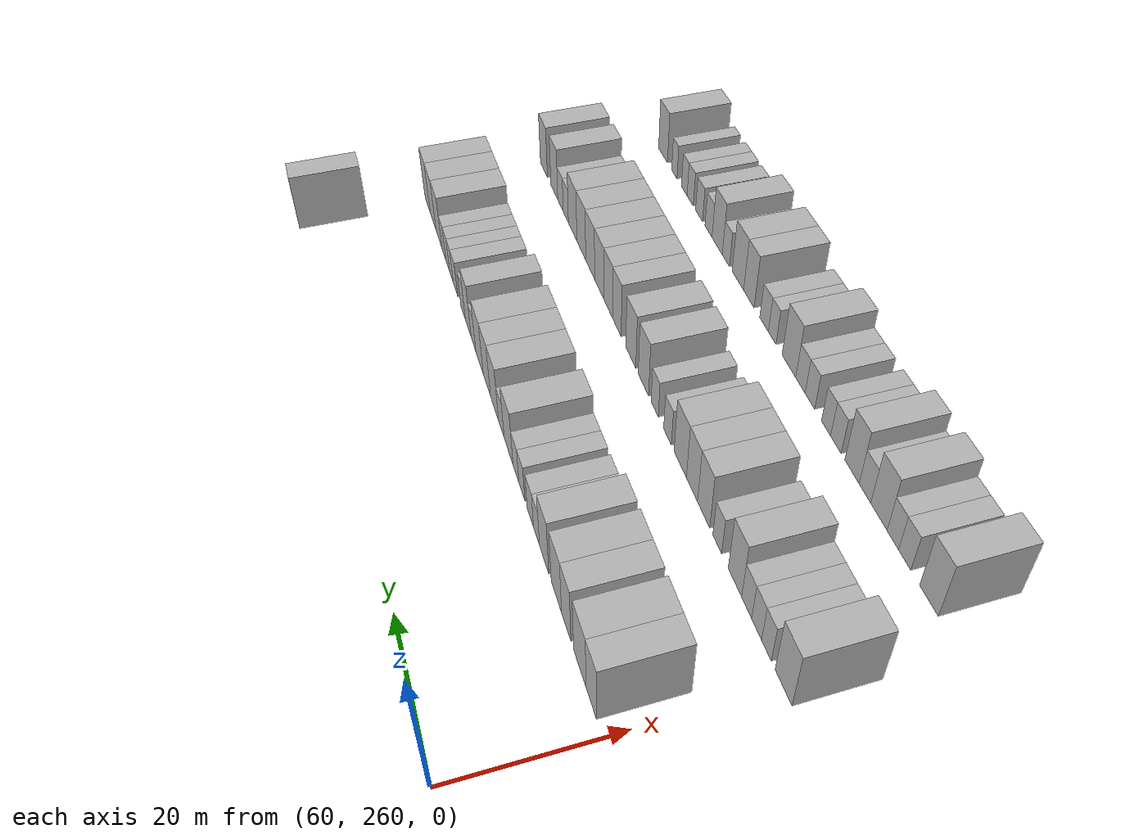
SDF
<sdf version="1.6">
 <world name="default">
  <model name="building_542">
   <static>1</static>
   <pose>63.0000 350.7032 0 0.000000 0.000000 0.000000</pose>
   <link name="link">
    <pose>0 0 4.50 0 0 0</pose>
    <collision name="collision"><geometry><box><size>10.0000 3.7293 9.0000</size></box></geometry></collision>
    <visual name="visual">
     <cast_shadows>0</cast_shadows>
     <geometry><box><size>10.0000 3.7293 9.0000</size></box></geometry>
     <material>
      <script>
       <uri>model://HANNAS_wall/materials/scripts</uri>
       <uri>model://HANNAS_wall/materials/textures</uri>
       <name>vrc/HANNAS_wall</name>
      </script>
     </material>
    </visual>
   </link>
  </model>
  <model name="building_701">
   <static>1</static>
   <pose>82.0000 263.8327 0 0.000000 0.000000 0.000000</pose>
   <link name="link">
    <pose>0 0 4.50 0 0 0</pose>
    <collision name="collision"><geometry><box><size>10.0000 3.6364 9.0000</size></box></geometry></collision>
    <visual name="visual">
     <cast_shadows>0</cast_shadows>
     <geometry><box><size>10.0000 3.6364 9.0000</size></box></geometry>
     <material>
      <script>
       <uri>model://HANNAS_wall/materials/scripts</uri>
       <uri>model://HANNAS_wall/materials/textures</uri>
       <name>vrc/HANNAS_wall</name>
      </script>
     </material>
    </visual>
   </link>
  </model>
  <model name="building_702">
   <static>1</static>
   <pose>82.0000 267.8986 0 0.000000 0.000000 0.000000</pose>
   <link name="link">
    <pose>0 0 4.50 0 0 0</pose>
    <collision name="collision"><geometry><box><size>10.0000 4.4954 9.0000</size></box></geometry></collision>
    <visual name="visual">
     <cast_shadows>0</cast_shadows>
     <geometry><box><size>10.0000 4.4954 9.0000</size></box></geometry>
     <material>
      <script>
       <uri>model://HANNAS_wall/materials/scripts</uri>
       <uri>model://HANNAS_wall/materials/textures</uri>
       <name>vrc/HANNAS_wall</name>
      </script>
     </material>
    </visual>
   </link>
  </model>
  <model name="building_703">
   <static>1</static>
   <pose>82.0000 272.9608 0 0.000000 0.000000 0.000000</pose>
   <link name="link">
    <pose>0 0 4.50 0 0 0</pose>
    <collision name="collision"><geometry><box><size>10.0000 3.6290 9.0000</size></box></geometry></collision>
    <visual name="visual">
     <cast_shadows>0</cast_shadows>
     <geometry><box><size>10.0000 3.6290 9.0000</size></box></geometry>
     <material>
      <script>
       <uri>model://HANNAS_wall/materials/scripts</uri>
       <uri>model://HANNAS_wall/materials/textures</uri>
       <name>vrc/HANNAS_wall</name>
      </script>
     </material>
    </visual>
   </link>
  </model>
  <model name="building_704">
   <static>1</static>
   <pose>82.0000 276.8304 0 0.000000 0.000000 0.000000</pose>
   <link name="link">
    <pose>0 0 4.50 0 0 0</pose>
    <collision name="collision"><geometry><box><size>10.0000 4.1103 9.0000</size></box></geometry></collision>
    <visual name="visual">
     <cast_shadows>0</cast_shadows>
     <geometry><box><size>10.0000 4.1103 9.0000</size></box></geometry>
     <material>
      <script>
       <uri>model://HANNAS_wall/materials/scripts</uri>
       <uri>model://HANNAS_wall/materials/textures</uri>
       <name>vrc/HANNAS_wall</name>
      </script>
     </material>
    </visual>
   </link>
  </model>
  <model name="building_705">
   <static>1</static>
   <pose>82.0000 281.8546 0 0.000000 0.000000 0.000000</pose>
   <link name="link">
    <pose>0 0 4.50 0 0 0</pose>
    <collision name="collision"><geometry><box><size>10.0000 3.9380 9.0000</size></box></geometry></collision>
    <visual name="visual">
     <cast_shadows>0</cast_shadows>
     <geometry><box><size>10.0000 3.9380 9.0000</size></box></geometry>
     <material>
      <script>
       <uri>model://HANNAS_wall/materials/scripts</uri>
       <uri>model://HANNAS_wall/materials/textures</uri>
       <name>vrc/HANNAS_wall</name>
      </script>
     </material>
    </visual>
   </link>
  </model>
  <model name="building_706">
   <static>1</static>
   <pose>82.0000 285.1386 0 0.000000 0.000000 0.000000</pose>
   <link name="link">
    <pose>0 0 3.00 0 0 0</pose>
    <collision name="collision"><geometry><box><size>10.0000 2.6300 6.0000</size></box></geometry></collision>
    <visual name="visual">
     <cast_shadows>0</cast_shadows>
     <geometry><box><size>10.0000 2.6300 6.0000</size></box></geometry>
     <material>
      <script>
       <uri>model://HANNAS_wall/materials/scripts</uri>
       <uri>model://HANNAS_wall/materials/textures</uri>
       <name>vrc/HANNAS_wall</name>
      </script>
     </material>
    </visual>
   </link>
  </model>
  <model name="building_707">
   <static>1</static>
   <pose>82.0000 287.8864 0 0.000000 0.000000 0.000000</pose>
   <link name="link">
    <pose>0 0 3.00 0 0 0</pose>
    <collision name="collision"><geometry><box><size>10.0000 2.8657 6.0000</size></box></geometry></collision>
    <visual name="visual">
     <cast_shadows>0</cast_shadows>
     <geometry><box><size>10.0000 2.8657 6.0000</size></box></geometry>
     <material>
      <script>
       <uri>model://HANNAS_wall/materials/scripts</uri>
       <uri>model://HANNAS_wall/materials/textures</uri>
       <name>vrc/HANNAS_wall</name>
      </script>
     </material>
    </visual>
   </link>
  </model>
  <model name="building_708">
   <static>1</static>
   <pose>82.0000 291.7132 0 0.000000 0.000000 0.000000</pose>
   <link name="link">
    <pose>0 0 3.00 0 0 0</pose>
    <collision name="collision"><geometry><box><size>10.0000 2.7879 6.0000</size></box></geometry></collision>
    <visual name="visual">
     <cast_shadows>0</cast_shadows>
     <geometry><box><size>10.0000 2.7879 6.0000</size></box></geometry>
     <material>
      <script>
       <uri>model://HANNAS_wall/materials/scripts</uri>
       <uri>model://HANNAS_wall/materials/textures</uri>
       <name>vrc/HANNAS_wall</name>
      </script>
     </material>
    </visual>
   </link>
  </model>
  <model name="building_709">
   <static>1</static>
   <pose>82.0000 294.5393 0 0.000000 0.000000 0.000000</pose>
   <link name="link">
    <pose>0 0 3.00 0 0 0</pose>
    <collision name="collision"><geometry><box><size>10.0000 2.8644 6.0000</size></box></geometry></collision>
    <visual name="visual">
     <cast_shadows>0</cast_shadows>
     <geometry><box><size>10.0000 2.8644 6.0000</size></box></geometry>
     <material>
      <script>
       <uri>model://HANNAS_wall/materials/scripts</uri>
       <uri>model://HANNAS_wall/materials/textures</uri>
       <name>vrc/HANNAS_wall</name>
      </script>
     </material>
    </visual>
   </link>
  </model>
  <model name="building_710">
   <static>1</static>
   <pose>82.0000 298.2023 0 0.000000 0.000000 0.000000</pose>
   <link name="link">
    <pose>0 0 4.50 0 0 0</pose>
    <collision name="collision"><geometry><box><size>10.0000 4.4615 9.0000</size></box></geometry></collision>
    <visual name="visual">
     <cast_shadows>0</cast_shadows>
     <geometry><box><size>10.0000 4.4615 9.0000</size></box></geometry>
     <material>
      <script>
       <uri>model://HANNAS_wall/materials/scripts</uri>
       <uri>model://HANNAS_wall/materials/textures</uri>
       <name>vrc/HANNAS_wall</name>
      </script>
     </material>
    </visual>
   </link>
  </model>
  <model name="building_711">
   <static>1</static>
   <pose>82.0000 301.8687 0 0.000000 0.000000 0.000000</pose>
   <link name="link">
    <pose>0 0 3.00 0 0 0</pose>
    <collision name="collision"><geometry><box><size>10.0000 2.8715 6.0000</size></box></geometry></collision>
    <visual name="visual">
     <cast_shadows>0</cast_shadows>
     <geometry><box><size>10.0000 2.8715 6.0000</size></box></geometry>
     <material>
      <script>
       <uri>model://HANNAS_wall/materials/scripts</uri>
       <uri>model://HANNAS_wall/materials/textures</uri>
       <name>vrc/HANNAS_wall</name>
      </script>
     </material>
    </visual>
   </link>
  </model>
  <model name="building_712">
   <static>1</static>
   <pose>82.0000 305.4776 0 0.000000 0.000000 0.000000</pose>
   <link name="link">
    <pose>0 0 4.50 0 0 0</pose>
    <collision name="collision"><geometry><box><size>10.0000 4.3463 9.0000</size></box></geometry></collision>
    <visual name="visual">
     <cast_shadows>0</cast_shadows>
     <geometry><box><size>10.0000 4.3463 9.0000</size></box></geometry>
     <material>
      <script>
       <uri>model://HANNAS_wall/materials/scripts</uri>
       <uri>model://HANNAS_wall/materials/textures</uri>
       <name>vrc/HANNAS_wall</name>
      </script>
     </material>
    </visual>
   </link>
  </model>
  <model name="building_713">
   <static>1</static>
   <pose>82.0000 309.6884 0 0.000000 0.000000 0.000000</pose>
   <link name="link">
    <pose>0 0 4.50 0 0 0</pose>
    <collision name="collision"><geometry><box><size>10.0000 4.0752 9.0000</size></box></geometry></collision>
    <visual name="visual">
     <cast_shadows>0</cast_shadows>
     <geometry><box><size>10.0000 4.0752 9.0000</size></box></geometry>
     <material>
      <script>
       <uri>model://HANNAS_wall/materials/scripts</uri>
       <uri>model://HANNAS_wall/materials/textures</uri>
       <name>vrc/HANNAS_wall</name>
      </script>
     </material>
    </visual>
   </link>
  </model>
  <model name="building_714">
   <static>1</static>
   <pose>82.0000 313.9102 0 0.000000 0.000000 0.000000</pose>
   <link name="link">
    <pose>0 0 4.50 0 0 0</pose>
    <collision name="collision"><geometry><box><size>10.0000 4.3685 9.0000</size></box></geometry></collision>
    <visual name="visual">
     <cast_shadows>0</cast_shadows>
     <geometry><box><size>10.0000 4.3685 9.0000</size></box></geometry>
     <material>
      <script>
       <uri>model://HANNAS_wall/materials/scripts</uri>
       <uri>model://HANNAS_wall/materials/textures</uri>
       <name>vrc/HANNAS_wall</name>
      </script>
     </material>
    </visual>
   </link>
  </model>
  <model name="building_715">
   <static>1</static>
   <pose>82.0000 317.4751 0 0.000000 0.000000 0.000000</pose>
   <link name="link">
    <pose>0 0 3.00 0 0 0</pose>
    <collision name="collision"><geometry><box><size>10.0000 2.7612 6.0000</size></box></geometry></collision>
    <visual name="visual">
     <cast_shadows>0</cast_shadows>
     <geometry><box><size>10.0000 2.7612 6.0000</size></box></geometry>
     <material>
      <script>
       <uri>model://HANNAS_wall/materials/scripts</uri>
       <uri>model://HANNAS_wall/materials/textures</uri>
       <name>vrc/HANNAS_wall</name>
      </script>
     </material>
    </visual>
   </link>
  </model>
  <model name="building_716">
   <static>1</static>
   <pose>82.0000 320.6723 0 0.000000 0.000000 0.000000</pose>
   <link name="link">
    <pose>0 0 4.50 0 0 0</pose>
    <collision name="collision"><geometry><box><size>10.0000 3.6331 9.0000</size></box></geometry></collision>
    <visual name="visual">
     <cast_shadows>0</cast_shadows>
     <geometry><box><size>10.0000 3.6331 9.0000</size></box></geometry>
     <material>
      <script>
       <uri>model://HANNAS_wall/materials/scripts</uri>
       <uri>model://HANNAS_wall/materials/textures</uri>
       <name>vrc/HANNAS_wall</name>
      </script>
     </material>
    </visual>
   </link>
  </model>
  <model name="building_717">
   <static>1</static>
   <pose>82.0000 323.9174 0 0.000000 0.000000 0.000000</pose>
   <link name="link">
    <pose>0 0 3.00 0 0 0</pose>
    <collision name="collision"><geometry><box><size>10.0000 2.8570 6.0000</size></box></geometry></collision>
    <visual name="visual">
     <cast_shadows>0</cast_shadows>
     <geometry><box><size>10.0000 2.8570 6.0000</size></box></geometry>
     <material>
      <script>
       <uri>model://HANNAS_wall/materials/scripts</uri>
       <uri>model://HANNAS_wall/materials/textures</uri>
       <name>vrc/HANNAS_wall</name>
      </script>
     </material>
    </visual>
   </link>
  </model>
  <model name="building_718">
   <static>1</static>
   <pose>82.0000 328.8183 0 0.000000 0.000000 0.000000</pose>
   <link name="link">
    <pose>0 0 3.00 0 0 0</pose>
    <collision name="collision"><geometry><box><size>10.0000 2.9448 6.0000</size></box></geometry></collision>
    <visual name="visual">
     <cast_shadows>0</cast_shadows>
     <geometry><box><size>10.0000 2.9448 6.0000</size></box></geometry>
     <material>
      <script>
       <uri>model://HANNAS_wall/materials/scripts</uri>
       <uri>model://HANNAS_wall/materials/textures</uri>
       <name>vrc/HANNAS_wall</name>
      </script>
     </material>
    </visual>
   </link>
  </model>
  <model name="building_719">
   <static>1</static>
   <pose>82.0000 331.5050 0 0.000000 0.000000 0.000000</pose>
   <link name="link">
    <pose>0 0 3.00 0 0 0</pose>
    <collision name="collision"><geometry><box><size>10.0000 2.4285 6.0000</size></box></geometry></collision>
    <visual name="visual">
     <cast_shadows>0</cast_shadows>
     <geometry><box><size>10.0000 2.4285 6.0000</size></box></geometry>
     <material>
      <script>
       <uri>model://HANNAS_wall/materials/scripts</uri>
       <uri>model://HANNAS_wall/materials/textures</uri>
       <name>vrc/HANNAS_wall</name>
      </script>
     </material>
    </visual>
   </link>
  </model>
  <model name="building_720">
   <static>1</static>
   <pose>82.0000 334.0654 0 0.000000 0.000000 0.000000</pose>
   <link name="link">
    <pose>0 0 3.00 0 0 0</pose>
    <collision name="collision"><geometry><box><size>10.0000 2.6923 6.0000</size></box></geometry></collision>
    <visual name="visual">
     <cast_shadows>0</cast_shadows>
     <geometry><box><size>10.0000 2.6923 6.0000</size></box></geometry>
     <material>
      <script>
       <uri>model://HANNAS_wall/materials/scripts</uri>
       <uri>model://HANNAS_wall/materials/textures</uri>
       <name>vrc/HANNAS_wall</name>
      </script>
     </material>
    </visual>
   </link>
  </model>
  <model name="building_721">
   <static>1</static>
   <pose>82.0000 336.7646 0 0.000000 0.000000 0.000000</pose>
   <link name="link">
    <pose>0 0 3.00 0 0 0</pose>
    <collision name="collision"><geometry><box><size>10.0000 2.7061 6.0000</size></box></geometry></collision>
    <visual name="visual">
     <cast_shadows>0</cast_shadows>
     <geometry><box><size>10.0000 2.7061 6.0000</size></box></geometry>
     <material>
      <script>
       <uri>model://HANNAS_wall/materials/scripts</uri>
       <uri>model://HANNAS_wall/materials/textures</uri>
       <name>vrc/HANNAS_wall</name>
      </script>
     </material>
    </visual>
   </link>
  </model>
  <model name="building_722">
   <static>1</static>
   <pose>82.0000 340.3026 0 0.000000 0.000000 0.000000</pose>
   <link name="link">
    <pose>0 0 4.50 0 0 0</pose>
    <collision name="collision"><geometry><box><size>10.0000 4.3700 9.0000</size></box></geometry></collision>
    <visual name="visual">
     <cast_shadows>0</cast_shadows>
     <geometry><box><size>10.0000 4.3700 9.0000</size></box></geometry>
     <material>
      <script>
       <uri>model://HANNAS_wall/materials/scripts</uri>
       <uri>model://HANNAS_wall/materials/textures</uri>
       <name>vrc/HANNAS_wall</name>
      </script>
     </material>
    </visual>
   </link>
  </model>
  <model name="building_723">
   <static>1</static>
   <pose>82.0000 344.6816 0 0.000000 0.000000 0.000000</pose>
   <link name="link">
    <pose>0 0 4.50 0 0 0</pose>
    <collision name="collision"><geometry><box><size>10.0000 4.3879 9.0000</size></box></geometry></collision>
    <visual name="visual">
     <cast_shadows>0</cast_shadows>
     <geometry><box><size>10.0000 4.3879 9.0000</size></box></geometry>
     <material>
      <script>
       <uri>model://HANNAS_wall/materials/scripts</uri>
       <uri>model://HANNAS_wall/materials/textures</uri>
       <name>vrc/HANNAS_wall</name>
      </script>
     </material>
    </visual>
   </link>
  </model>
  <model name="building_724">
   <static>1</static>
   <pose>82.0000 348.9063 0 0.000000 0.000000 0.000000</pose>
   <link name="link">
    <pose>0 0 4.50 0 0 0</pose>
    <collision name="collision"><geometry><box><size>10.0000 4.0616 9.0000</size></box></geometry></collision>
    <visual name="visual">
     <cast_shadows>0</cast_shadows>
     <geometry><box><size>10.0000 4.0616 9.0000</size></box></geometry>
     <material>
      <script>
       <uri>model://HANNAS_wall/materials/scripts</uri>
       <uri>model://HANNAS_wall/materials/textures</uri>
       <name>vrc/HANNAS_wall</name>
      </script>
     </material>
    </visual>
   </link>
  </model>
  <model name="building_867">
   <static>1</static>
   <pose>101.0000 259.7779 0 0.000000 0.000000 0.000000</pose>
   <link name="link">
    <pose>0 0 4.50 0 0 0</pose>
    <collision name="collision"><geometry><box><size>10.0000 4.2278 9.0000</size></box></geometry></collision>
    <visual name="visual">
     <cast_shadows>0</cast_shadows>
     <geometry><box><size>10.0000 4.2278 9.0000</size></box></geometry>
     <material>
      <script>
       <uri>model://HANNAS_wall/materials/scripts</uri>
       <uri>model://HANNAS_wall/materials/textures</uri>
       <name>vrc/HANNAS_wall</name>
      </script>
     </material>
    </visual>
   </link>
  </model>
  <model name="building_868">
   <static>1</static>
   <pose>101.0000 264.1701 0 0.000000 0.000000 0.000000</pose>
   <link name="link">
    <pose>0 0 3.00 0 0 0</pose>
    <collision name="collision"><geometry><box><size>10.0000 2.5567 6.0000</size></box></geometry></collision>
    <visual name="visual">
     <cast_shadows>0</cast_shadows>
     <geometry><box><size>10.0000 2.5567 6.0000</size></box></geometry>
     <material>
      <script>
       <uri>model://HANNAS_wall/materials/scripts</uri>
       <uri>model://HANNAS_wall/materials/textures</uri>
       <name>vrc/HANNAS_wall</name>
      </script>
     </material>
    </visual>
   </link>
  </model>
  <model name="building_869">
   <static>1</static>
   <pose>101.0000 266.7973 0 0.000000 0.000000 0.000000</pose>
   <link name="link">
    <pose>0 0 3.00 0 0 0</pose>
    <collision name="collision"><geometry><box><size>10.0000 2.6977 6.0000</size></box></geometry></collision>
    <visual name="visual">
     <cast_shadows>0</cast_shadows>
     <geometry><box><size>10.0000 2.6977 6.0000</size></box></geometry>
     <material>
      <script>
       <uri>model://HANNAS_wall/materials/scripts</uri>
       <uri>model://HANNAS_wall/materials/textures</uri>
       <name>vrc/HANNAS_wall</name>
      </script>
     </material>
    </visual>
   </link>
  </model>
  <model name="building_870">
   <static>1</static>
   <pose>101.0000 269.5507 0 0.000000 0.000000 0.000000</pose>
   <link name="link">
    <pose>0 0 3.00 0 0 0</pose>
    <collision name="collision"><geometry><box><size>10.0000 2.8090 6.0000</size></box></geometry></collision>
    <visual name="visual">
     <cast_shadows>0</cast_shadows>
     <geometry><box><size>10.0000 2.8090 6.0000</size></box></geometry>
     <material>
      <script>
       <uri>model://HANNAS_wall/materials/scripts</uri>
       <uri>model://HANNAS_wall/materials/textures</uri>
       <name>vrc/HANNAS_wall</name>
      </script>
     </material>
    </visual>
   </link>
  </model>
  <model name="building_871">
   <static>1</static>
   <pose>101.0000 272.8901 0 0.000000 0.000000 0.000000</pose>
   <link name="link">
    <pose>0 0 4.50 0 0 0</pose>
    <collision name="collision"><geometry><box><size>10.0000 3.8697 9.0000</size></box></geometry></collision>
    <visual name="visual">
     <cast_shadows>0</cast_shadows>
     <geometry><box><size>10.0000 3.8697 9.0000</size></box></geometry>
     <material>
      <script>
       <uri>model://HANNAS_wall/materials/scripts</uri>
       <uri>model://HANNAS_wall/materials/textures</uri>
       <name>vrc/HANNAS_wall</name>
      </script>
     </material>
    </visual>
   </link>
  </model>
  <model name="building_872">
   <static>1</static>
   <pose>101.0000 278.1676 0 0.000000 0.000000 0.000000</pose>
   <link name="link">
    <pose>0 0 3.00 0 0 0</pose>
    <collision name="collision"><geometry><box><size>10.0000 2.6854 6.0000</size></box></geometry></collision>
    <visual name="visual">
     <cast_shadows>0</cast_shadows>
     <geometry><box><size>10.0000 2.6854 6.0000</size></box></geometry>
     <material>
      <script>
       <uri>model://HANNAS_wall/materials/scripts</uri>
       <uri>model://HANNAS_wall/materials/textures</uri>
       <name>vrc/HANNAS_wall</name>
      </script>
     </material>
    </visual>
   </link>
  </model>
  <model name="building_873">
   <static>1</static>
   <pose>101.0000 282.4734 0 0.000000 0.000000 0.000000</pose>
   <link name="link">
    <pose>0 0 4.50 0 0 0</pose>
    <collision name="collision"><geometry><box><size>10.0000 3.9262 9.0000</size></box></geometry></collision>
    <visual name="visual">
     <cast_shadows>0</cast_shadows>
     <geometry><box><size>10.0000 3.9262 9.0000</size></box></geometry>
     <material>
      <script>
       <uri>model://HANNAS_wall/materials/scripts</uri>
       <uri>model://HANNAS_wall/materials/textures</uri>
       <name>vrc/HANNAS_wall</name>
      </script>
     </material>
    </visual>
   </link>
  </model>
  <model name="building_874">
   <static>1</static>
   <pose>101.0000 286.2929 0 0.000000 0.000000 0.000000</pose>
   <link name="link">
    <pose>0 0 4.50 0 0 0</pose>
    <collision name="collision"><geometry><box><size>10.0000 3.7128 9.0000</size></box></geometry></collision>
    <visual name="visual">
     <cast_shadows>0</cast_shadows>
     <geometry><box><size>10.0000 3.7128 9.0000</size></box></geometry>
     <material>
      <script>
       <uri>model://HANNAS_wall/materials/scripts</uri>
       <uri>model://HANNAS_wall/materials/textures</uri>
       <name>vrc/HANNAS_wall</name>
      </script>
     </material>
    </visual>
   </link>
  </model>
  <model name="building_875">
   <static>1</static>
   <pose>101.0000 290.2833 0 0.000000 0.000000 0.000000</pose>
   <link name="link">
    <pose>0 0 4.50 0 0 0</pose>
    <collision name="collision"><geometry><box><size>10.0000 4.2680 9.0000</size></box></geometry></collision>
    <visual name="visual">
     <cast_shadows>0</cast_shadows>
     <geometry><box><size>10.0000 4.2680 9.0000</size></box></geometry>
     <material>
      <script>
       <uri>model://HANNAS_wall/materials/scripts</uri>
       <uri>model://HANNAS_wall/materials/textures</uri>
       <name>vrc/HANNAS_wall</name>
      </script>
     </material>
    </visual>
   </link>
  </model>
  <model name="building_876">
   <static>1</static>
   <pose>101.0000 294.8067 0 0.000000 0.000000 0.000000</pose>
   <link name="link">
    <pose>0 0 3.00 0 0 0</pose>
    <collision name="collision"><geometry><box><size>10.0000 2.7787 6.0000</size></box></geometry></collision>
    <visual name="visual">
     <cast_shadows>0</cast_shadows>
     <geometry><box><size>10.0000 2.7787 6.0000</size></box></geometry>
     <material>
      <script>
       <uri>model://HANNAS_wall/materials/scripts</uri>
       <uri>model://HANNAS_wall/materials/textures</uri>
       <name>vrc/HANNAS_wall</name>
      </script>
     </material>
    </visual>
   </link>
  </model>
  <model name="building_877">
   <static>1</static>
   <pose>101.0000 299.5668 0 0.000000 0.000000 0.000000</pose>
   <link name="link">
    <pose>0 0 3.00 0 0 0</pose>
    <collision name="collision"><geometry><box><size>10.0000 2.7416 6.0000</size></box></geometry></collision>
    <visual name="visual">
     <cast_shadows>0</cast_shadows>
     <geometry><box><size>10.0000 2.7416 6.0000</size></box></geometry>
     <material>
      <script>
       <uri>model://HANNAS_wall/materials/scripts</uri>
       <uri>model://HANNAS_wall/materials/textures</uri>
       <name>vrc/HANNAS_wall</name>
      </script>
     </material>
    </visual>
   </link>
  </model>
  <model name="building_878">
   <static>1</static>
   <pose>101.0000 303.9743 0 0.000000 0.000000 0.000000</pose>
   <link name="link">
    <pose>0 0 4.50 0 0 0</pose>
    <collision name="collision"><geometry><box><size>10.0000 4.0733 9.0000</size></box></geometry></collision>
    <visual name="visual">
     <cast_shadows>0</cast_shadows>
     <geometry><box><size>10.0000 4.0733 9.0000</size></box></geometry>
     <material>
      <script>
       <uri>model://HANNAS_wall/materials/scripts</uri>
       <uri>model://HANNAS_wall/materials/textures</uri>
       <name>vrc/HANNAS_wall</name>
      </script>
     </material>
    </visual>
   </link>
  </model>
  <model name="building_879">
   <static>1</static>
   <pose>101.0000 309.1019 0 0.000000 0.000000 0.000000</pose>
   <link name="link">
    <pose>0 0 4.50 0 0 0</pose>
    <collision name="collision"><geometry><box><size>10.0000 4.1820 9.0000</size></box></geometry></collision>
    <visual name="visual">
     <cast_shadows>0</cast_shadows>
     <geometry><box><size>10.0000 4.1820 9.0000</size></box></geometry>
     <material>
      <script>
       <uri>model://HANNAS_wall/materials/scripts</uri>
       <uri>model://HANNAS_wall/materials/textures</uri>
       <name>vrc/HANNAS_wall</name>
      </script>
     </material>
    </visual>
   </link>
  </model>
  <model name="building_880">
   <static>1</static>
   <pose>101.0000 315.1020 0 0.000000 0.000000 0.000000</pose>
   <link name="link">
    <pose>0 0 4.50 0 0 0</pose>
    <collision name="collision"><geometry><box><size>10.0000 3.8182 9.0000</size></box></geometry></collision>
    <visual name="visual">
     <cast_shadows>0</cast_shadows>
     <geometry><box><size>10.0000 3.8182 9.0000</size></box></geometry>
     <material>
      <script>
       <uri>model://HANNAS_wall/materials/scripts</uri>
       <uri>model://HANNAS_wall/materials/textures</uri>
       <name>vrc/HANNAS_wall</name>
      </script>
     </material>
    </visual>
   </link>
  </model>
  <model name="building_881">
   <static>1</static>
   <pose>101.0000 319.0130 0 0.000000 0.000000 0.000000</pose>
   <link name="link">
    <pose>0 0 4.50 0 0 0</pose>
    <collision name="collision"><geometry><box><size>10.0000 4.0037 9.0000</size></box></geometry></collision>
    <visual name="visual">
     <cast_shadows>0</cast_shadows>
     <geometry><box><size>10.0000 4.0037 9.0000</size></box></geometry>
     <material>
      <script>
       <uri>model://HANNAS_wall/materials/scripts</uri>
       <uri>model://HANNAS_wall/materials/textures</uri>
       <name>vrc/HANNAS_wall</name>
      </script>
     </material>
    </visual>
   </link>
  </model>
  <model name="building_882">
   <static>1</static>
   <pose>101.0000 323.1503 0 0.000000 0.000000 0.000000</pose>
   <link name="link">
    <pose>0 0 4.50 0 0 0</pose>
    <collision name="collision"><geometry><box><size>10.0000 4.2710 9.0000</size></box></geometry></collision>
    <visual name="visual">
     <cast_shadows>0</cast_shadows>
     <geometry><box><size>10.0000 4.2710 9.0000</size></box></geometry>
     <material>
      <script>
       <uri>model://HANNAS_wall/materials/scripts</uri>
       <uri>model://HANNAS_wall/materials/textures</uri>
       <name>vrc/HANNAS_wall</name>
      </script>
     </material>
    </visual>
   </link>
  </model>
  <model name="building_883">
   <static>1</static>
   <pose>101.0000 327.4695 0 0.000000 0.000000 0.000000</pose>
   <link name="link">
    <pose>0 0 4.50 0 0 0</pose>
    <collision name="collision"><geometry><box><size>10.0000 4.3673 9.0000</size></box></geometry></collision>
    <visual name="visual">
     <cast_shadows>0</cast_shadows>
     <geometry><box><size>10.0000 4.3673 9.0000</size></box></geometry>
     <material>
      <script>
       <uri>model://HANNAS_wall/materials/scripts</uri>
       <uri>model://HANNAS_wall/materials/textures</uri>
       <name>vrc/HANNAS_wall</name>
      </script>
     </material>
    </visual>
   </link>
  </model>
  <model name="building_884">
   <static>1</static>
   <pose>101.0000 331.8958 0 0.000000 0.000000 0.000000</pose>
   <link name="link">
    <pose>0 0 4.50 0 0 0</pose>
    <collision name="collision"><geometry><box><size>10.0000 4.4852 9.0000</size></box></geometry></collision>
    <visual name="visual">
     <cast_shadows>0</cast_shadows>
     <geometry><box><size>10.0000 4.4852 9.0000</size></box></geometry>
     <material>
      <script>
       <uri>model://HANNAS_wall/materials/scripts</uri>
       <uri>model://HANNAS_wall/materials/textures</uri>
       <name>vrc/HANNAS_wall</name>
      </script>
     </material>
    </visual>
   </link>
  </model>
  <model name="building_885">
   <static>1</static>
   <pose>101.0000 336.3688 0 0.000000 0.000000 0.000000</pose>
   <link name="link">
    <pose>0 0 4.50 0 0 0</pose>
    <collision name="collision"><geometry><box><size>10.0000 4.4609 9.0000</size></box></geometry></collision>
    <visual name="visual">
     <cast_shadows>0</cast_shadows>
     <geometry><box><size>10.0000 4.4609 9.0000</size></box></geometry>
     <material>
      <script>
       <uri>model://HANNAS_wall/materials/scripts</uri>
       <uri>model://HANNAS_wall/materials/textures</uri>
       <name>vrc/HANNAS_wall</name>
      </script>
     </material>
    </visual>
   </link>
  </model>
  <model name="building_886">
   <static>1</static>
   <pose>101.0000 340.0154 0 0.000000 0.000000 0.000000</pose>
   <link name="link">
    <pose>0 0 3.00 0 0 0</pose>
    <collision name="collision"><geometry><box><size>10.0000 2.8323 6.0000</size></box></geometry></collision>
    <visual name="visual">
     <cast_shadows>0</cast_shadows>
     <geometry><box><size>10.0000 2.8323 6.0000</size></box></geometry>
     <material>
      <script>
       <uri>model://HANNAS_wall/materials/scripts</uri>
       <uri>model://HANNAS_wall/materials/textures</uri>
       <name>vrc/HANNAS_wall</name>
      </script>
     </material>
    </visual>
   </link>
  </model>
  <model name="building_887">
   <static>1</static>
   <pose>101.0000 342.9173 0 0.000000 0.000000 0.000000</pose>
   <link name="link">
    <pose>0 0 3.00 0 0 0</pose>
    <collision name="collision"><geometry><box><size>10.0000 2.9715 6.0000</size></box></geometry></collision>
    <visual name="visual">
     <cast_shadows>0</cast_shadows>
     <geometry><box><size>10.0000 2.9715 6.0000</size></box></geometry>
     <material>
      <script>
       <uri>model://HANNAS_wall/materials/scripts</uri>
       <uri>model://HANNAS_wall/materials/textures</uri>
       <name>vrc/HANNAS_wall</name>
      </script>
     </material>
    </visual>
   </link>
  </model>
  <model name="building_888">
   <static>1</static>
   <pose>101.0000 346.3729 0 0.000000 0.000000 0.000000</pose>
   <link name="link">
    <pose>0 0 4.50 0 0 0</pose>
    <collision name="collision"><geometry><box><size>10.0000 3.9397 9.0000</size></box></geometry></collision>
    <visual name="visual">
     <cast_shadows>0</cast_shadows>
     <geometry><box><size>10.0000 3.9397 9.0000</size></box></geometry>
     <material>
      <script>
       <uri>model://HANNAS_wall/materials/scripts</uri>
       <uri>model://HANNAS_wall/materials/textures</uri>
       <name>vrc/HANNAS_wall</name>
      </script>
     </material>
    </visual>
   </link>
  </model>
  <model name="building_889">
   <static>1</static>
   <pose>101.0000 352.4017 0 0.000000 0.000000 0.000000</pose>
   <link name="link">
    <pose>0 0 4.50 0 0 0</pose>
    <collision name="collision"><geometry><box><size>10.0000 4.1180 9.0000</size></box></geometry></collision>
    <visual name="visual">
     <cast_shadows>0</cast_shadows>
     <geometry><box><size>10.0000 4.1180 9.0000</size></box></geometry>
     <material>
      <script>
       <uri>model://HANNAS_wall/materials/scripts</uri>
       <uri>model://HANNAS_wall/materials/textures</uri>
       <name>vrc/HANNAS_wall</name>
      </script>
     </material>
    </visual>
   </link>
  </model>
  <model name="building_1047">
   <static>1</static>
   <pose>120.0000 264.6358 0 0.000000 0.000000 0.000000</pose>
   <link name="link">
    <pose>0 0 4.50 0 0 0</pose>
    <collision name="collision"><geometry><box><size>10.0000 4.0927 9.0000</size></box></geometry></collision>
    <visual name="visual">
     <cast_shadows>0</cast_shadows>
     <geometry><box><size>10.0000 4.0927 9.0000</size></box></geometry>
     <material>
      <script>
       <uri>model://HANNAS_wall/materials/scripts</uri>
       <uri>model://HANNAS_wall/materials/textures</uri>
       <name>vrc/HANNAS_wall</name>
      </script>
     </material>
    </visual>
   </link>
  </model>
  <model name="building_1048">
   <static>1</static>
   <pose>120.0000 270.1131 0 0.000000 0.000000 0.000000</pose>
   <link name="link">
    <pose>0 0 3.00 0 0 0</pose>
    <collision name="collision"><geometry><box><size>10.0000 2.8618 6.0000</size></box></geometry></collision>
    <visual name="visual">
     <cast_shadows>0</cast_shadows>
     <geometry><box><size>10.0000 2.8618 6.0000</size></box></geometry>
     <material>
      <script>
       <uri>model://HANNAS_wall/materials/scripts</uri>
       <uri>model://HANNAS_wall/materials/textures</uri>
       <name>vrc/HANNAS_wall</name>
      </script>
     </material>
    </visual>
   </link>
  </model>
  <model name="building_1049">
   <static>1</static>
   <pose>120.0000 272.9182 0 0.000000 0.000000 0.000000</pose>
   <link name="link">
    <pose>0 0 3.00 0 0 0</pose>
    <collision name="collision"><geometry><box><size>10.0000 2.7484 6.0000</size></box></geometry></collision>
    <visual name="visual">
     <cast_shadows>0</cast_shadows>
     <geometry><box><size>10.0000 2.7484 6.0000</size></box></geometry>
     <material>
      <script>
       <uri>model://HANNAS_wall/materials/scripts</uri>
       <uri>model://HANNAS_wall/materials/textures</uri>
       <name>vrc/HANNAS_wall</name>
      </script>
     </material>
    </visual>
   </link>
  </model>
  <model name="building_1050">
   <static>1</static>
   <pose>120.0000 276.3297 0 0.000000 0.000000 0.000000</pose>
   <link name="link">
    <pose>0 0 4.50 0 0 0</pose>
    <collision name="collision"><geometry><box><size>10.0000 4.0747 9.0000</size></box></geometry></collision>
    <visual name="visual">
     <cast_shadows>0</cast_shadows>
     <geometry><box><size>10.0000 4.0747 9.0000</size></box></geometry>
     <material>
      <script>
       <uri>model://HANNAS_wall/materials/scripts</uri>
       <uri>model://HANNAS_wall/materials/textures</uri>
       <name>vrc/HANNAS_wall</name>
      </script>
     </material>
    </visual>
   </link>
  </model>
  <model name="building_1051">
   <static>1</static>
   <pose>120.0000 279.8543 0 0.000000 0.000000 0.000000</pose>
   <link name="link">
    <pose>0 0 3.00 0 0 0</pose>
    <collision name="collision"><geometry><box><size>10.0000 2.9746 6.0000</size></box></geometry></collision>
    <visual name="visual">
     <cast_shadows>0</cast_shadows>
     <geometry><box><size>10.0000 2.9746 6.0000</size></box></geometry>
     <material>
      <script>
       <uri>model://HANNAS_wall/materials/scripts</uri>
       <uri>model://HANNAS_wall/materials/textures</uri>
       <name>vrc/HANNAS_wall</name>
      </script>
     </material>
    </visual>
   </link>
  </model>
  <model name="building_1052">
   <static>1</static>
   <pose>120.0000 283.2533 0 0.000000 0.000000 0.000000</pose>
   <link name="link">
    <pose>0 0 4.50 0 0 0</pose>
    <collision name="collision"><geometry><box><size>10.0000 3.8234 9.0000</size></box></geometry></collision>
    <visual name="visual">
     <cast_shadows>0</cast_shadows>
     <geometry><box><size>10.0000 3.8234 9.0000</size></box></geometry>
     <material>
      <script>
       <uri>model://HANNAS_wall/materials/scripts</uri>
       <uri>model://HANNAS_wall/materials/textures</uri>
       <name>vrc/HANNAS_wall</name>
      </script>
     </material>
    </visual>
   </link>
  </model>
  <model name="building_1053">
   <static>1</static>
   <pose>120.0000 287.6356 0 0.000000 0.000000 0.000000</pose>
   <link name="link">
    <pose>0 0 3.00 0 0 0</pose>
    <collision name="collision"><geometry><box><size>10.0000 2.9411 6.0000</size></box></geometry></collision>
    <visual name="visual">
     <cast_shadows>0</cast_shadows>
     <geometry><box><size>10.0000 2.9411 6.0000</size></box></geometry>
     <material>
      <script>
       <uri>model://HANNAS_wall/materials/scripts</uri>
       <uri>model://HANNAS_wall/materials/textures</uri>
       <name>vrc/HANNAS_wall</name>
      </script>
     </material>
    </visual>
   </link>
  </model>
  <model name="building_1054">
   <static>1</static>
   <pose>120.0000 290.4002 0 0.000000 0.000000 0.000000</pose>
   <link name="link">
    <pose>0 0 3.00 0 0 0</pose>
    <collision name="collision"><geometry><box><size>10.0000 2.5880 6.0000</size></box></geometry></collision>
    <visual name="visual">
     <cast_shadows>0</cast_shadows>
     <geometry><box><size>10.0000 2.5880 6.0000</size></box></geometry>
     <material>
      <script>
       <uri>model://HANNAS_wall/materials/scripts</uri>
       <uri>model://HANNAS_wall/materials/textures</uri>
       <name>vrc/HANNAS_wall</name>
      </script>
     </material>
    </visual>
   </link>
  </model>
  <model name="building_1055">
   <static>1</static>
   <pose>120.0000 295.1323 0 0.000000 0.000000 0.000000</pose>
   <link name="link">
    <pose>0 0 3.00 0 0 0</pose>
    <collision name="collision"><geometry><box><size>10.0000 2.8763 6.0000</size></box></geometry></collision>
    <visual name="visual">
     <cast_shadows>0</cast_shadows>
     <geometry><box><size>10.0000 2.8763 6.0000</size></box></geometry>
     <material>
      <script>
       <uri>model://HANNAS_wall/materials/scripts</uri>
       <uri>model://HANNAS_wall/materials/textures</uri>
       <name>vrc/HANNAS_wall</name>
      </script>
     </material>
    </visual>
   </link>
  </model>
  <model name="building_1056">
   <static>1</static>
   <pose>120.0000 298.0150 0 0.000000 0.000000 0.000000</pose>
   <link name="link">
    <pose>0 0 3.00 0 0 0</pose>
    <collision name="collision"><geometry><box><size>10.0000 2.8891 6.0000</size></box></geometry></collision>
    <visual name="visual">
     <cast_shadows>0</cast_shadows>
     <geometry><box><size>10.0000 2.8891 6.0000</size></box></geometry>
     <material>
      <script>
       <uri>model://HANNAS_wall/materials/scripts</uri>
       <uri>model://HANNAS_wall/materials/textures</uri>
       <name>vrc/HANNAS_wall</name>
      </script>
     </material>
    </visual>
   </link>
  </model>
  <model name="building_1057">
   <static>1</static>
   <pose>120.0000 301.6229 0 0.000000 0.000000 0.000000</pose>
   <link name="link">
    <pose>0 0 4.50 0 0 0</pose>
    <collision name="collision"><geometry><box><size>10.0000 4.3267 9.0000</size></box></geometry></collision>
    <visual name="visual">
     <cast_shadows>0</cast_shadows>
     <geometry><box><size>10.0000 4.3267 9.0000</size></box></geometry>
     <material>
      <script>
       <uri>model://HANNAS_wall/materials/scripts</uri>
       <uri>model://HANNAS_wall/materials/textures</uri>
       <name>vrc/HANNAS_wall</name>
      </script>
     </material>
    </visual>
   </link>
  </model>
  <model name="building_1058">
   <static>1</static>
   <pose>120.0000 307.0616 0 0.000000 0.000000 0.000000</pose>
   <link name="link">
    <pose>0 0 3.00 0 0 0</pose>
    <collision name="collision"><geometry><box><size>10.0000 2.5507 6.0000</size></box></geometry></collision>
    <visual name="visual">
     <cast_shadows>0</cast_shadows>
     <geometry><box><size>10.0000 2.5507 6.0000</size></box></geometry>
     <material>
      <script>
       <uri>model://HANNAS_wall/materials/scripts</uri>
       <uri>model://HANNAS_wall/materials/textures</uri>
       <name>vrc/HANNAS_wall</name>
      </script>
     </material>
    </visual>
   </link>
  </model>
  <model name="building_1059">
   <static>1</static>
   <pose>120.0000 309.8096 0 0.000000 0.000000 0.000000</pose>
   <link name="link">
    <pose>0 0 3.00 0 0 0</pose>
    <collision name="collision"><geometry><box><size>10.0000 2.9452 6.0000</size></box></geometry></collision>
    <visual name="visual">
     <cast_shadows>0</cast_shadows>
     <geometry><box><size>10.0000 2.9452 6.0000</size></box></geometry>
     <material>
      <script>
       <uri>model://HANNAS_wall/materials/scripts</uri>
       <uri>model://HANNAS_wall/materials/textures</uri>
       <name>vrc/HANNAS_wall</name>
      </script>
     </material>
    </visual>
   </link>
  </model>
  <model name="building_1060">
   <static>1</static>
   <pose>120.0000 315.1578 0 0.000000 0.000000 0.000000</pose>
   <link name="link">
    <pose>0 0 4.50 0 0 0</pose>
    <collision name="collision"><geometry><box><size>10.0000 3.7513 9.0000</size></box></geometry></collision>
    <visual name="visual">
     <cast_shadows>0</cast_shadows>
     <geometry><box><size>10.0000 3.7513 9.0000</size></box></geometry>
     <material>
      <script>
       <uri>model://HANNAS_wall/materials/scripts</uri>
       <uri>model://HANNAS_wall/materials/textures</uri>
       <name>vrc/HANNAS_wall</name>
      </script>
     </material>
    </visual>
   </link>
  </model>
  <model name="building_1061">
   <static>1</static>
   <pose>120.0000 319.1713 0 0.000000 0.000000 0.000000</pose>
   <link name="link">
    <pose>0 0 4.50 0 0 0</pose>
    <collision name="collision"><geometry><box><size>10.0000 4.2756 9.0000</size></box></geometry></collision>
    <visual name="visual">
     <cast_shadows>0</cast_shadows>
     <geometry><box><size>10.0000 4.2756 9.0000</size></box></geometry>
     <material>
      <script>
       <uri>model://HANNAS_wall/materials/scripts</uri>
       <uri>model://HANNAS_wall/materials/textures</uri>
       <name>vrc/HANNAS_wall</name>
      </script>
     </material>
    </visual>
   </link>
  </model>
  <model name="building_1062">
   <static>1</static>
   <pose>120.0000 323.6911 0 0.000000 0.000000 0.000000</pose>
   <link name="link">
    <pose>0 0 3.00 0 0 0</pose>
    <collision name="collision"><geometry><box><size>10.0000 2.7640 6.0000</size></box></geometry></collision>
    <visual name="visual">
     <cast_shadows>0</cast_shadows>
     <geometry><box><size>10.0000 2.7640 6.0000</size></box></geometry>
     <material>
      <script>
       <uri>model://HANNAS_wall/materials/scripts</uri>
       <uri>model://HANNAS_wall/materials/textures</uri>
       <name>vrc/HANNAS_wall</name>
      </script>
     </material>
    </visual>
   </link>
  </model>
  <model name="building_1063">
   <static>1</static>
   <pose>120.0000 327.1145 0 0.000000 0.000000 0.000000</pose>
   <link name="link">
    <pose>0 0 4.50 0 0 0</pose>
    <collision name="collision"><geometry><box><size>10.0000 4.0828 9.0000</size></box></geometry></collision>
    <visual name="visual">
     <cast_shadows>0</cast_shadows>
     <geometry><box><size>10.0000 4.0828 9.0000</size></box></geometry>
     <material>
      <script>
       <uri>model://HANNAS_wall/materials/scripts</uri>
       <uri>model://HANNAS_wall/materials/textures</uri>
       <name>vrc/HANNAS_wall</name>
      </script>
     </material>
    </visual>
   </link>
  </model>
  <model name="building_1064">
   <static>1</static>
   <pose>120.0000 330.5974 0 0.000000 0.000000 0.000000</pose>
   <link name="link">
    <pose>0 0 3.00 0 0 0</pose>
    <collision name="collision"><geometry><box><size>10.0000 2.8831 6.0000</size></box></geometry></collision>
    <visual name="visual">
     <cast_shadows>0</cast_shadows>
     <geometry><box><size>10.0000 2.8831 6.0000</size></box></geometry>
     <material>
      <script>
       <uri>model://HANNAS_wall/materials/scripts</uri>
       <uri>model://HANNAS_wall/materials/textures</uri>
       <name>vrc/HANNAS_wall</name>
      </script>
     </material>
    </visual>
   </link>
  </model>
  <model name="building_1065">
   <static>1</static>
   <pose>120.0000 334.4977 0 0.000000 0.000000 0.000000</pose>
   <link name="link">
    <pose>0 0 3.00 0 0 0</pose>
    <collision name="collision"><geometry><box><size>10.0000 2.9174 6.0000</size></box></geometry></collision>
    <visual name="visual">
     <cast_shadows>0</cast_shadows>
     <geometry><box><size>10.0000 2.9174 6.0000</size></box></geometry>
     <material>
      <script>
       <uri>model://HANNAS_wall/materials/scripts</uri>
       <uri>model://HANNAS_wall/materials/textures</uri>
       <name>vrc/HANNAS_wall</name>
      </script>
     </material>
    </visual>
   </link>
  </model>
  <model name="building_1066">
   <static>1</static>
   <pose>120.0000 338.3020 0 0.000000 0.000000 0.000000</pose>
   <link name="link">
    <pose>0 0 3.00 0 0 0</pose>
    <collision name="collision"><geometry><box><size>10.0000 2.6914 6.0000</size></box></geometry></collision>
    <visual name="visual">
     <cast_shadows>0</cast_shadows>
     <geometry><box><size>10.0000 2.6914 6.0000</size></box></geometry>
     <material>
      <script>
       <uri>model://HANNAS_wall/materials/scripts</uri>
       <uri>model://HANNAS_wall/materials/textures</uri>
       <name>vrc/HANNAS_wall</name>
      </script>
     </material>
    </visual>
   </link>
  </model>
  <model name="building_1067">
   <static>1</static>
   <pose>120.0000 340.8988 0 0.000000 0.000000 0.000000</pose>
   <link name="link">
    <pose>0 0 3.00 0 0 0</pose>
    <collision name="collision"><geometry><box><size>10.0000 2.5022 6.0000</size></box></geometry></collision>
    <visual name="visual">
     <cast_shadows>0</cast_shadows>
     <geometry><box><size>10.0000 2.5022 6.0000</size></box></geometry>
     <material>
      <script>
       <uri>model://HANNAS_wall/materials/scripts</uri>
       <uri>model://HANNAS_wall/materials/textures</uri>
       <name>vrc/HANNAS_wall</name>
      </script>
     </material>
    </visual>
   </link>
  </model>
  <model name="building_1068">
   <static>1</static>
   <pose>120.0000 345.3530 0 0.000000 0.000000 0.000000</pose>
   <link name="link">
    <pose>0 0 3.00 0 0 0</pose>
    <collision name="collision"><geometry><box><size>10.0000 2.4062 6.0000</size></box></geometry></collision>
    <visual name="visual">
     <cast_shadows>0</cast_shadows>
     <geometry><box><size>10.0000 2.4062 6.0000</size></box></geometry>
     <material>
      <script>
       <uri>model://HANNAS_wall/materials/scripts</uri>
       <uri>model://HANNAS_wall/materials/textures</uri>
       <name>vrc/HANNAS_wall</name>
      </script>
     </material>
    </visual>
   </link>
  </model>
  <model name="building_1069">
   <static>1</static>
   <pose>120.0000 350.6423 0 0.000000 0.000000 0.000000</pose>
   <link name="link">
    <pose>0 0 4.50 0 0 0</pose>
    <collision name="collision"><geometry><box><size>10.0000 4.1723 9.0000</size></box></geometry></collision>
    <visual name="visual">
     <cast_shadows>0</cast_shadows>
     <geometry><box><size>10.0000 4.1723 9.0000</size></box></geometry>
     <material>
      <script>
       <uri>model://HANNAS_wall/materials/scripts</uri>
       <uri>model://HANNAS_wall/materials/textures</uri>
       <name>vrc/HANNAS_wall</name>
      </script>
     </material>
    </visual>
   </link>
  </model>
 </world>
</sdf>
